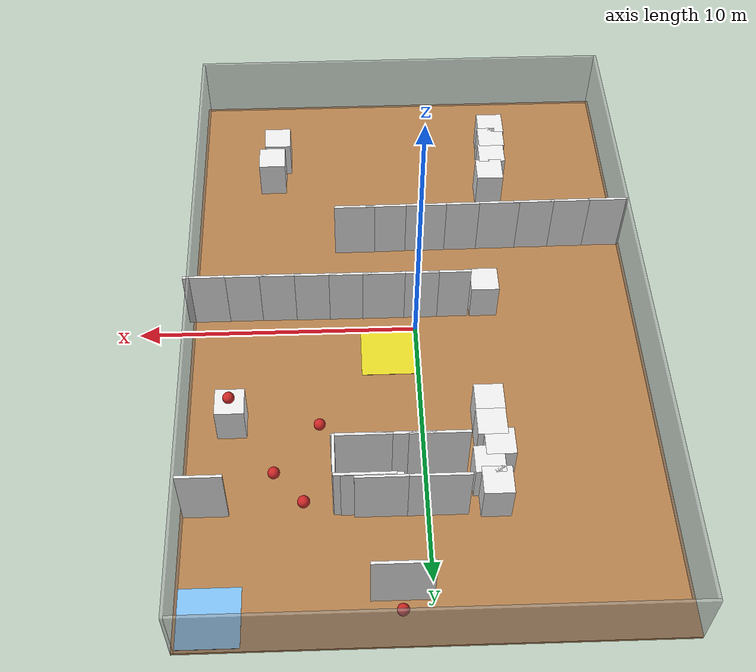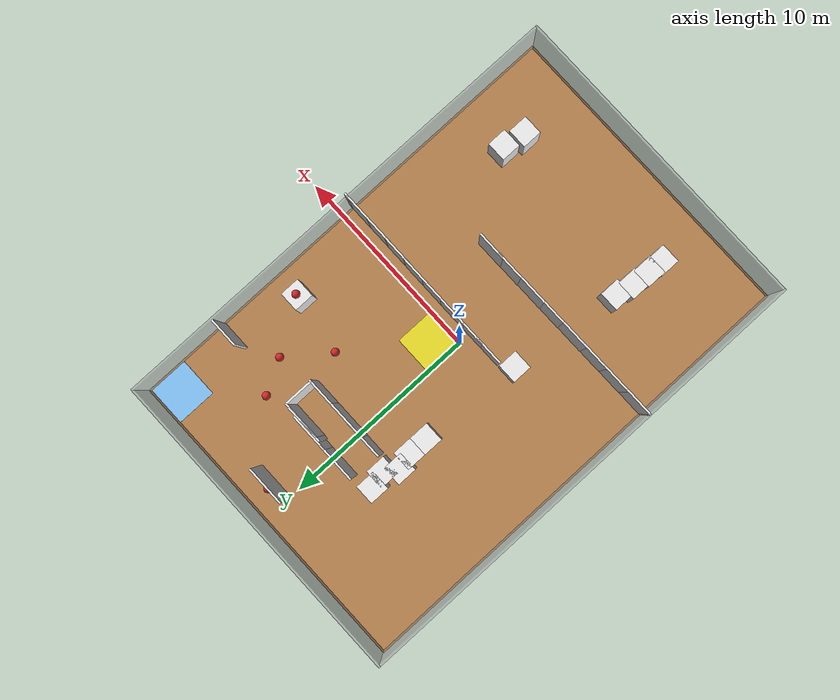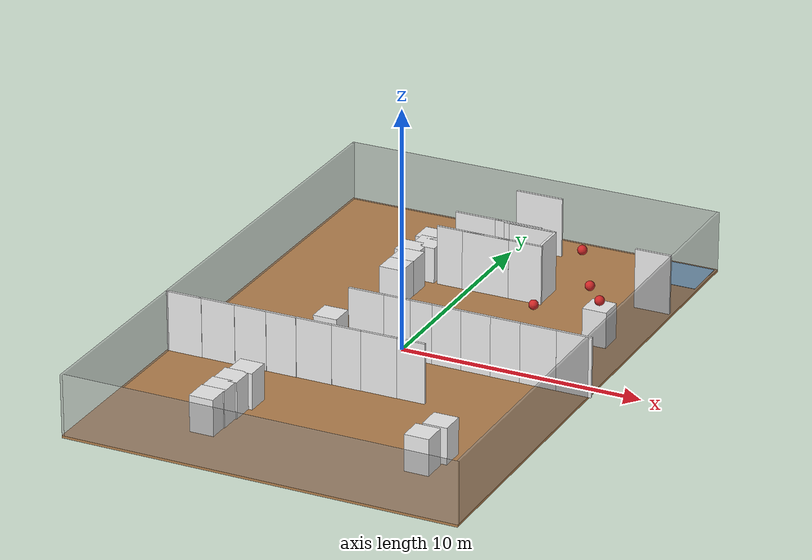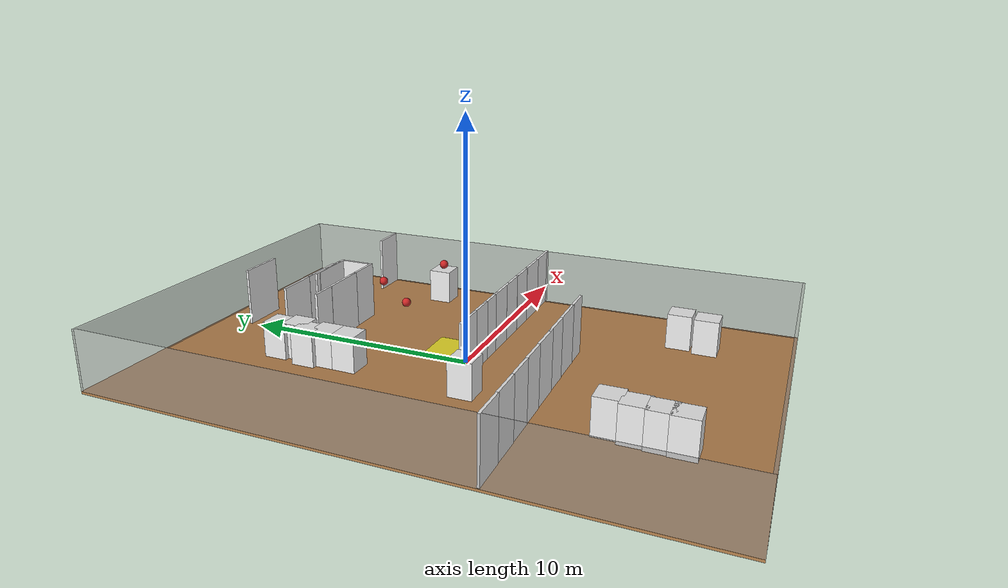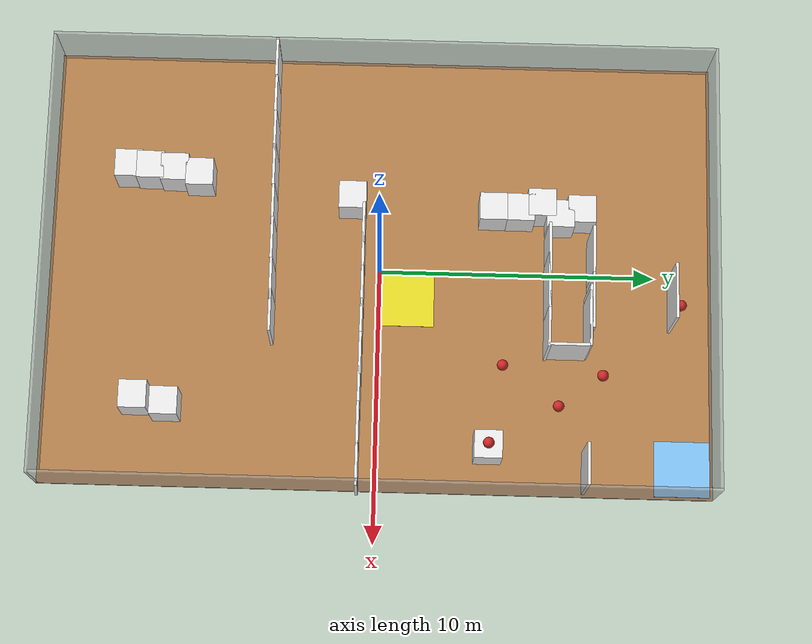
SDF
<sdf version="1.6">
 <world name="default">
  <light name="sun" type="directional">
   <pose>0 0 10 0 -0 0</pose>
   <diffuse>0.8 0.8 0.8 1</diffuse>
   <specular>0.2 0.2 0.2 1</specular>
   <attenuation>
    <range>1000</range>
    <constant>0.9</constant>
    <linear>0.01</linear>
    <quadratic>0.001</quadratic>
   </attenuation>
   <direction>-0.5 0.1 -0.9</direction>
  </light>
  <physics name="default_physics" default="0" type="ode">
   <real_time_update_rate>1000.0</real_time_update_rate>
   <max_step_size>0.001</max_step_size>
   <real_time_factor>1</real_time_factor>
   <ode>
    <solver>
     <type>quick</type>
     <iters>150</iters>
     <precon_iters>0</precon_iters>
     <sor>1.400000</sor>
     <use_dynamic_moi_rescaling>1</use_dynamic_moi_rescaling>
    </solver>
    <constraints>
     <cfm>0.00001</cfm>
     <erp>0.2</erp>
     <contact_max_correcting_vel>2000.000000</contact_max_correcting_vel>
     <contact_surface_layer>0.01000</contact_surface_layer>
    </constraints>
   </ode>
  </physics>
  <model name="box_1">
   <pose>0.05 -12.05 1.25 0 -0 0</pose>
   <static>1</static>
   <link name="link">
    <collision name="collision"><geometry><box><size>16.1 0.1 2.5</size></box></geometry></collision>
    <visual name="visual">
     <geometry><box><size>16.1 0.1 2.5</size></box></geometry>
     <material>
      <script><name>Gazebo/GreyTransparent</name><uri>file://media/materials/scripts/gazebo.material</uri></script>
     </material>
    </visual>
   </link>
  </model>
  <model name="box_2">
   <pose>8.05 0.05 1.25 0 -0 0</pose>
   <static>1</static>
   <link name="link">
    <collision name="collision"><geometry><box><size>0.1 24.1 2.5</size></box></geometry></collision>
    <visual name="visual">
     <geometry><box><size>0.1 24.1 2.5</size></box></geometry>
     <material>
      <script><name>Gazebo/GreyTransparent</name><uri>file://media/materials/scripts/gazebo.material</uri></script>
     </material>
    </visual>
   </link>
  </model>
  <model name="box_3">
   <pose>-0.05 12.05 1.25 0 -0 0</pose>
   <static>1</static>
   <link name="link">
    <collision name="collision"><geometry><box><size>16.1 0.1 2.5</size></box></geometry></collision>
    <visual name="visual">
     <geometry><box><size>16.1 0.1 2.5</size></box></geometry>
     <material>
      <script><name>Gazebo/GreyTransparent</name><uri>file://media/materials/scripts/gazebo.material</uri></script>
     </material>
    </visual>
   </link>
  </model>
  <model name="box_4">
   <pose>-8.05 -0.05 1.25 0 -0 0</pose>
   <static>1</static>
   <link name="link">
    <collision name="collision"><geometry><box><size>0.1 24.1 2.5</size></box></geometry></collision>
    <visual name="visual">
     <geometry><box><size>0.1 24.1 2.5</size></box></geometry>
     <material>
      <script><name>Gazebo/GreyTransparent</name><uri>file://media/materials/scripts/gazebo.material</uri></script>
     </material>
    </visual>
   </link>
  </model>
  <model name="box_5">
   <pose>0 0 -0.05 0 -0 0</pose>
   <static>1</static>
   <link name="link">
    <collision name="collision"><geometry><box><size>16.2 24.2 0.1</size></box></geometry></collision>
    <visual name="visual">
     <geometry><box><size>16.2 24.2 0.1</size></box></geometry>
     <material>
      <script><name>Gazebo/WoodFloor</name><uri>file://media/materials/scripts/gazebo.material</uri></script>
     </material>
    </visual>
   </link>
  </model>
  <model name="box_6">
   <pose>3.05 6.75 1.25 0 -0 0</pose>
   <static>1</static>
   <link name="link">
    <collision name="collision"><geometry><box><size>0.1 1.5 2.5</size></box></geometry></collision>
    <visual name="visual">
     <geometry><box><size>0.1 1.5 2.5</size></box></geometry>
     <material>
      <script><name>Gazebo/White</name><uri>file://media/materials/scripts/gazebo.material</uri></script>
     </material>
    </visual>
   </link>
  </model>
  <model name="box_7">
   <pose>1 10.55 1.25 0 -0 0</pose>
   <static>1</static>
   <link name="link">
    <collision name="collision"><geometry><box><size>2 0.1 2.5</size></box></geometry></collision>
    <visual name="visual">
     <geometry><box><size>2 0.1 2.5</size></box></geometry>
     <material>
      <script><name>Gazebo/White</name><uri>file://media/materials/scripts/gazebo.material</uri></script>
     </material>
    </visual>
   </link>
  </model>
  <model name="box_8">
   <pose>7.25 7.45 1.25 0 -0 0</pose>
   <static>1</static>
   <link name="link">
    <collision name="collision"><geometry><box><size>1.5 0.1 2.5</size></box></geometry></collision>
    <visual name="visual">
     <geometry><box><size>1.5 0.1 2.5</size></box></geometry>
     <material>
      <script><name>Gazebo/White</name><uri>file://media/materials/scripts/gazebo.material</uri></script>
     </material>
    </visual>
   </link>
  </model>
  <model name="box_9">
   <pose>6.5 4 0.75 0 -0 0</pose>
   <static>1</static>
   <link name="link">
    <collision name="collision"><geometry><box><size>1 1 1.5</size></box></geometry></collision>
    <visual name="visual">
     <geometry><box><size>1 1 1.5</size></box></geometry>
     <material>
      <script><name>Gazebo/White</name><uri>file://media/materials/scripts/gazebo.material</uri></script>
     </material>
    </visual>
   </link>
  </model>
  <model name="box_10">
   <pose>1 1 0.005 0 -0 0</pose>
   <static>1</static>
   <link name="link">
    <collision name="collision"><geometry><box><size>2 2 0.01</size></box></geometry></collision>
    <visual name="visual">
     <geometry><box><size>2 2 0.01</size></box></geometry>
     <material>
      <script><name>Gazebo/Yellow</name><uri>file://media/materials/scripts/gazebo.material</uri></script>
     </material>
    </visual>
   </link>
  </model>
  <model name="box_11">
   <pose>7 11 0.005 0 -0 0</pose>
   <static>1</static>
   <link name="link">
    <collision name="collision"><geometry><box><size>2 2 0.01</size></box></geometry></collision>
    <visual name="visual">
     <geometry><box><size>2 2 0.01</size></box></geometry>
     <material>
      <script><name>Gazebo/SkyBlue</name><uri>file://media/materials/scripts/gazebo.material</uri></script>
     </material>
    </visual>
   </link>
  </model>
  <model name="sphere_1">
   <pose>3.5 4.5 0.72 0 -0 0</pose>
   <static>1</static>
   <link name="link">
    <collision name="collision"><geometry><sphere><radius>0.2</radius></sphere></geometry></collision>
    <visual name="visual">
     <geometry><sphere><radius>0.2</radius></sphere></geometry>
     <material>
      <script><name>Gazebo/Red</name><uri>file://media/materials/scripts/gazebo.material</uri></script>
     </material>
    </visual>
   </link>
  </model>
  <model name="sphere_2">
   <pose>4 8 1.72 0 -0 0</pose>
   <static>1</static>
   <link name="link">
    <collision name="collision"><geometry><sphere><radius>0.2</radius></sphere></geometry></collision>
    <visual name="visual">
     <geometry><sphere><radius>0.2</radius></sphere></geometry>
     <material>
      <script><name>Gazebo/Red</name><uri>file://media/materials/scripts/gazebo.material</uri></script>
     </material>
    </visual>
   </link>
  </model>
  <model name="sphere_3">
   <pose>5 6.5 1 0 -0 0</pose>
   <static>1</static>
   <link name="link">
    <collision name="collision"><geometry><sphere><radius>0.2</radius></sphere></geometry></collision>
    <visual name="visual">
     <geometry><sphere><radius>0.2</radius></sphere></geometry>
     <material>
      <script><name>Gazebo/Red</name><uri>file://media/materials/scripts/gazebo.material</uri></script>
     </material>
    </visual>
   </link>
  </model>
  <model name="sphere_4">
   <pose>6.5 4 1.72 0 -0 0</pose>
   <static>1</static>
   <link name="link">
    <collision name="collision"><geometry><sphere><radius>0.2</radius></sphere></geometry></collision>
    <visual name="visual">
     <geometry><sphere><radius>0.2</radius></sphere></geometry>
     <material>
      <script><name>Gazebo/Red</name><uri>file://media/materials/scripts/gazebo.material</uri></script>
     </material>
    </visual>
   </link>
  </model>
  <model name="sphere_5">
   <pose>1 11 0.2 0 -0 0</pose>
   <static>1</static>
   <link name="link">
    <collision name="collision"><geometry><sphere><radius>0.2</radius></sphere></geometry></collision>
    <visual name="visual">
     <geometry><sphere><radius>0.2</radius></sphere></geometry>
     <material>
      <script><name>Gazebo/Red</name><uri>file://media/materials/scripts/gazebo.material</uri></script>
     </material>
    </visual>
   </link>
  </model>
  <gravity>0 0 -9.8066</gravity>
  <magnetic_field>6e-06 2.3e-05 -4.2e-05</magnetic_field>
  <atmosphere type="adiabatic"/>
  <scene><ambient>0.4 0.4 0.4 1</ambient><background>0.7 0.7 0.7 1</background><shadows>1</shadows></scene>
  <spherical_coordinates>
   <surface_model>EARTH_WGS84</surface_model>
   <latitude_deg>0</latitude_deg>
   <longitude_deg>0</longitude_deg>
   <elevation>0</elevation>
   <heading_deg>0</heading_deg>
  </spherical_coordinates>
  <model name="box_8_clone">
   <pose>7.48667 -0.628309 1.25 0 -0 0</pose>
   <static>1</static>
   <link name="link">
    <collision name="collision"><geometry><box><size>1.5 0.1 2.5</size></box></geometry></collision>
    <visual name="visual">
     <geometry><box><size>1.5 0.1 2.5</size></box></geometry>
     <material>
      <script><name>Gazebo/White</name><uri>file://media/materials/scripts/gazebo.material</uri></script>
     </material>
    </visual>
   </link>
  </model>
  <model name="box_8_clone_clone">
   <pose>6.02834 -0.629635 1.25 0 -0 0</pose>
   <static>1</static>
   <link name="link">
    <collision name="collision"><geometry><box><size>1.5 0.1 2.5</size></box></geometry></collision>
    <visual name="visual">
     <geometry><box><size>1.5 0.1 2.5</size></box></geometry>
     <material>
      <script><name>Gazebo/White</name><uri>file://media/materials/scripts/gazebo.material</uri></script>
     </material>
    </visual>
   </link>
  </model>
  <model name="box_8_clone_clone_0">
   <pose>4.79045 -0.62339 1.25 0 -0 0</pose>
   <static>1</static>
   <link name="link">
    <collision name="collision"><geometry><box><size>1.5 0.1 2.5</size></box></geometry></collision>
    <visual name="visual">
     <geometry><box><size>1.5 0.1 2.5</size></box></geometry>
     <material>
      <script><name>Gazebo/White</name><uri>file://media/materials/scripts/gazebo.material</uri></script>
     </material>
    </visual>
   </link>
  </model>
  <model name="box_8_clone_clone_1">
   <pose>3.55347 -0.612787 1.25 0 -0 0</pose>
   <static>1</static>
   <link name="link">
    <collision name="collision"><geometry><box><size>1.5 0.1 2.5</size></box></geometry></collision>
    <visual name="visual">
     <geometry><box><size>1.5 0.1 2.5</size></box></geometry>
     <material>
      <script><name>Gazebo/White</name><uri>file://media/materials/scripts/gazebo.material</uri></script>
     </material>
    </visual>
   </link>
  </model>
  <model name="box_8_clone_clone_2">
   <pose>2.33718 -0.610519 1.25 0 -0 0</pose>
   <static>1</static>
   <link name="link">
    <collision name="collision"><geometry><box><size>1.5 0.1 2.5</size></box></geometry></collision>
    <visual name="visual">
     <geometry><box><size>1.5 0.1 2.5</size></box></geometry>
     <material>
      <script><name>Gazebo/White</name><uri>file://media/materials/scripts/gazebo.material</uri></script>
     </material>
    </visual>
   </link>
  </model>
  <model name="box_8_clone_clone_3">
   <pose>1.13648 -0.604834 1.25 0 -0 0</pose>
   <static>1</static>
   <link name="link">
    <collision name="collision"><geometry><box><size>1.5 0.1 2.5</size></box></geometry></collision>
    <visual name="visual">
     <geometry><box><size>1.5 0.1 2.5</size></box></geometry>
     <material>
      <script><name>Gazebo/White</name><uri>file://media/materials/scripts/gazebo.material</uri></script>
     </material>
    </visual>
   </link>
  </model>
  <model name="box_8_clone_clone_4">
   <pose>-0.06939 -0.608032 1.25 0 -0 0</pose>
   <static>1</static>
   <link name="link">
    <collision name="collision"><geometry><box><size>1.5 0.1 2.5</size></box></geometry></collision>
    <visual name="visual">
     <geometry><box><size>1.5 0.1 2.5</size></box></geometry>
     <material>
      <script><name>Gazebo/White</name><uri>file://media/materials/scripts/gazebo.material</uri></script>
     </material>
    </visual>
   </link>
  </model>
  <model name="box_8_clone_clone_5">
   <pose>-1.19812 -0.614896 1.25 0 -0 0</pose>
   <static>1</static>
   <link name="link">
    <collision name="collision"><geometry><box><size>1.5 0.1 2.5</size></box></geometry></collision>
    <visual name="visual">
     <geometry><box><size>1.5 0.1 2.5</size></box></geometry>
     <material>
      <script><name>Gazebo/White</name><uri>file://media/materials/scripts/gazebo.material</uri></script>
     </material>
    </visual>
   </link>
  </model>
  <model name="box_8_clone_clone_6">
   <pose>-7.31119 -3.93655 1.25 0 -0 0</pose>
   <static>1</static>
   <link name="link">
    <collision name="collision"><geometry><box><size>1.5 0.1 2.5</size></box></geometry></collision>
    <visual name="visual">
     <geometry><box><size>1.5 0.1 2.5</size></box></geometry>
     <material>
      <script><name>Gazebo/White</name><uri>file://media/materials/scripts/gazebo.material</uri></script>
     </material>
    </visual>
   </link>
  </model>
  <model name="box_8_clone_clone_7">
   <pose>-5.89443 -3.92311 1.25 0 -0 0</pose>
   <static>1</static>
   <link name="link">
    <collision name="collision"><geometry><box><size>1.5 0.1 2.5</size></box></geometry></collision>
    <visual name="visual">
     <geometry><box><size>1.5 0.1 2.5</size></box></geometry>
     <material>
      <script><name>Gazebo/White</name><uri>file://media/materials/scripts/gazebo.material</uri></script>
     </material>
    </visual>
   </link>
  </model>
  <model name="box_8_clone_clone_8">
   <pose>-4.55451 -3.9104 1.25 0 -0 0</pose>
   <static>1</static>
   <link name="link">
    <collision name="collision"><geometry><box><size>1.5 0.1 2.5</size></box></geometry></collision>
    <visual name="visual">
     <geometry><box><size>1.5 0.1 2.5</size></box></geometry>
     <material>
      <script><name>Gazebo/White</name><uri>file://media/materials/scripts/gazebo.material</uri></script>
     </material>
    </visual>
   </link>
  </model>
  <model name="box_8_clone_clone_9">
   <pose>-3.28418 -3.89786 1.25 0 -0 0</pose>
   <static>1</static>
   <link name="link">
    <collision name="collision"><geometry><box><size>1.5 0.1 2.5</size></box></geometry></collision>
    <visual name="visual">
     <geometry><box><size>1.5 0.1 2.5</size></box></geometry>
     <material>
      <script><name>Gazebo/White</name><uri>file://media/materials/scripts/gazebo.material</uri></script>
     </material>
    </visual>
   </link>
  </model>
  <model name="box_8_clone_clone_10">
   <pose>-1.79026 -3.88343 1.25 0 -0 0</pose>
   <static>1</static>
   <link name="link">
    <collision name="collision"><geometry><box><size>1.5 0.1 2.5</size></box></geometry></collision>
    <visual name="visual">
     <geometry><box><size>1.5 0.1 2.5</size></box></geometry>
     <material>
      <script><name>Gazebo/White</name><uri>file://media/materials/scripts/gazebo.material</uri></script>
     </material>
    </visual>
   </link>
  </model>
  <model name="box_8_clone_clone_11">
   <pose>-0.566924 -3.87205 1.25 0 -0 0</pose>
   <static>1</static>
   <link name="link">
    <collision name="collision"><geometry><box><size>1.5 0.1 2.5</size></box></geometry></collision>
    <visual name="visual">
     <geometry><box><size>1.5 0.1 2.5</size></box></geometry>
     <material>
      <script><name>Gazebo/White</name><uri>file://media/materials/scripts/gazebo.material</uri></script>
     </material>
    </visual>
   </link>
  </model>
  <model name="box_8_clone_clone_12">
   <pose>0.932378 -3.8577 1.25 0 -0 0</pose>
   <static>1</static>
   <link name="link">
    <collision name="collision"><geometry><box><size>1.5 0.1 2.5</size></box></geometry></collision>
    <visual name="visual">
     <geometry><box><size>1.5 0.1 2.5</size></box></geometry>
     <material>
      <script><name>Gazebo/White</name><uri>file://media/materials/scripts/gazebo.material</uri></script>
     </material>
    </visual>
   </link>
  </model>
  <model name="box_8_clone_clone_13">
   <pose>2.09308 -3.84636 1.25 0 -0 0</pose>
   <static>1</static>
   <link name="link">
    <collision name="collision"><geometry><box><size>1.5 0.1 2.5</size></box></geometry></collision>
    <visual name="visual">
     <geometry><box><size>1.5 0.1 2.5</size></box></geometry>
     <material>
      <script><name>Gazebo/White</name><uri>file://media/materials/scripts/gazebo.material</uri></script>
     </material>
    </visual>
   </link>
  </model>
  <model name="box_9_clone">
   <pose>-2.51952 -1.05293 0.75 0 -0 0</pose>
   <static>1</static>
   <link name="link">
    <collision name="collision"><geometry><box><size>1 1 1.5</size></box></geometry></collision>
    <visual name="visual">
     <geometry><box><size>1 1 1.5</size></box></geometry>
     <material>
      <script><name>Gazebo/White</name><uri>file://media/materials/scripts/gazebo.material</uri></script>
     </material>
    </visual>
   </link>
  </model>
  <model name="box_9_clone_clone">
   <pose>-3.50243 -9.24017 0.75 0 -0 0</pose>
   <static>1</static>
   <link name="link">
    <collision name="collision"><geometry><box><size>1 1 1.5</size></box></geometry></collision>
    <visual name="visual">
     <geometry><box><size>1 1 1.5</size></box></geometry>
     <material>
      <script><name>Gazebo/White</name><uri>file://media/materials/scripts/gazebo.material</uri></script>
     </material>
    </visual>
   </link>
  </model>
  <model name="box_9_clone_clone_0">
   <pose>-3.46298 -8.44795 0.75 0 -0 0</pose>
   <static>1</static>
   <link name="link">
    <collision name="collision"><geometry><box><size>1 1 1.5</size></box></geometry></collision>
    <visual name="visual">
     <geometry><box><size>1 1 1.5</size></box></geometry>
     <material>
      <script><name>Gazebo/White</name><uri>file://media/materials/scripts/gazebo.material</uri></script>
     </material>
    </visual>
   </link>
  </model>
  <model name="box_9_clone_clone_1">
   <pose>-3.40186 -7.56359 0.75 0 -0 0</pose>
   <static>1</static>
   <link name="link">
    <collision name="collision"><geometry><box><size>1 1 1.5</size></box></geometry></collision>
    <visual name="visual">
     <geometry><box><size>1 1 1.5</size></box></geometry>
     <material>
      <script><name>Gazebo/White</name><uri>file://media/materials/scripts/gazebo.material</uri></script>
     </material>
    </visual>
   </link>
  </model>
  <model name="box_9_clone_clone_2">
   <pose>-3.23885 -6.64819 0.75 0 -0 0</pose>
   <static>1</static>
   <link name="link">
    <collision name="collision"><geometry><box><size>1 1 1.5</size></box></geometry></collision>
    <visual name="visual">
     <geometry><box><size>1 1 1.5</size></box></geometry>
     <material>
      <script><name>Gazebo/White</name><uri>file://media/materials/scripts/gazebo.material</uri></script>
     </material>
    </visual>
   </link>
  </model>
  <model name="box_9_clone_clone_3">
   <pose>5.04068 -8.64867 0.75 0 -0 0</pose>
   <static>1</static>
   <link name="link">
    <collision name="collision"><geometry><box><size>1 1 1.5</size></box></geometry></collision>
    <visual name="visual">
     <geometry><box><size>1 1 1.5</size></box></geometry>
     <material>
      <script><name>Gazebo/White</name><uri>file://media/materials/scripts/gazebo.material</uri></script>
     </material>
    </visual>
   </link>
  </model>
  <model name="box_9_clone_clone_4">
   <pose>5.24363 -7.53941 0.75 0 -0 0</pose>
   <static>1</static>
   <link name="link">
    <collision name="collision"><geometry><box><size>1 1 1.5</size></box></geometry></collision>
    <visual name="visual">
     <geometry><box><size>1 1 1.5</size></box></geometry>
     <material>
      <script><name>Gazebo/White</name><uri>file://media/materials/scripts/gazebo.material</uri></script>
     </material>
    </visual>
   </link>
  </model>
  <model name="box_9_clone_clone_5">
   <pose>-2.21389 4.06737 0.75 0 -0 0</pose>
   <static>1</static>
   <link name="link">
    <collision name="collision"><geometry><box><size>1 1 1.5</size></box></geometry></collision>
    <visual name="visual">
     <geometry><box><size>1 1 1.5</size></box></geometry>
     <material>
      <script><name>Gazebo/White</name><uri>file://media/materials/scripts/gazebo.material</uri></script>
     </material>
    </visual>
   </link>
  </model>
  <model name="box_9_clone_clone_6">
   <pose>-2.20594 5.05311 0.75 0 -0 0</pose>
   <static>1</static>
   <link name="link">
    <collision name="collision"><geometry><box><size>1 1 1.5</size></box></geometry></collision>
    <visual name="visual">
     <geometry><box><size>1 1 1.5</size></box></geometry>
     <material>
      <script><name>Gazebo/White</name><uri>file://media/materials/scripts/gazebo.material</uri></script>
     </material>
    </visual>
   </link>
  </model>
  <model name="box_9_clone_clone_7">
   <pose>-2.40815 5.82285 0.75 0 -0 0</pose>
   <static>1</static>
   <link name="link">
    <collision name="collision"><geometry><box><size>1 1 1.5</size></box></geometry></collision>
    <visual name="visual">
     <geometry><box><size>1 1 1.5</size></box></geometry>
     <material>
      <script><name>Gazebo/White</name><uri>file://media/materials/scripts/gazebo.material</uri></script>
     </material>
    </visual>
   </link>
  </model>
  <model name="box_9_clone_clone_8">
   <pose>-2 6.49358 0.75 0 -0 0</pose>
   <static>1</static>
   <link name="link">
    <collision name="collision"><geometry><box><size>1 1 1.5</size></box></geometry></collision>
    <visual name="visual">
     <geometry><box><size>1 1 1.5</size></box></geometry>
     <material>
      <script><name>Gazebo/White</name><uri>file://media/materials/scripts/gazebo.material</uri></script>
     </material>
    </visual>
   </link>
  </model>
  <model name="box_9_clone_clone_9">
   <pose>-2.19565 7.27454 0.75 0 -0 0</pose>
   <static>1</static>
   <link name="link">
    <collision name="collision"><geometry><box><size>1 1 1.5</size></box></geometry></collision>
    <visual name="visual">
     <geometry><box><size>1 1 1.5</size></box></geometry>
     <material>
      <script><name>Gazebo/White</name><uri>file://media/materials/scripts/gazebo.material</uri></script>
     </material>
    </visual>
   </link>
  </model>
  <model name="box_7_clone">
   <pose>-0.305095 7.61216 1.25 0 -0 0</pose>
   <static>1</static>
   <link name="link">
    <collision name="collision"><geometry><box><size>2 0.1 2.5</size></box></geometry></collision>
    <visual name="visual">
     <geometry><box><size>2 0.1 2.5</size></box></geometry>
     <material>
      <script><name>Gazebo/White</name><uri>file://media/materials/scripts/gazebo.material</uri></script>
     </material>
    </visual>
   </link>
  </model>
  <model name="box_7_clone_0">
   <pose>1.41089 7.60832 1.25 0 -0 0</pose>
   <static>1</static>
   <link name="link">
    <collision name="collision"><geometry><box><size>2 0.1 2.5</size></box></geometry></collision>
    <visual name="visual">
     <geometry><box><size>2 0.1 2.5</size></box></geometry>
     <material>
      <script><name>Gazebo/White</name><uri>file://media/materials/scripts/gazebo.material</uri></script>
     </material>
    </visual>
   </link>
  </model>
  <model name="box_7_clone_1">
   <pose>1.84692 7.52258 1.25 0 -0 0</pose>
   <static>1</static>
   <link name="link">
    <collision name="collision"><geometry><box><size>2 0.1 2.5</size></box></geometry></collision>
    <visual name="visual">
     <geometry><box><size>2 0.1 2.5</size></box></geometry>
     <material>
      <script><name>Gazebo/White</name><uri>file://media/materials/scripts/gazebo.material</uri></script>
     </material>
    </visual>
   </link>
  </model>
  <model name="box_7_clone_2">
   <pose>2.07025 7.503 1.25 0 -0 0</pose>
   <static>1</static>
   <link name="link">
    <collision name="collision"><geometry><box><size>2 0.1 2.5</size></box></geometry></collision>
    <visual name="visual">
     <geometry><box><size>2 0.1 2.5</size></box></geometry>
     <material>
      <script><name>Gazebo/White</name><uri>file://media/materials/scripts/gazebo.material</uri></script>
     </material>
    </visual>
   </link>
  </model>
  <model name="box_7_clone_3">
   <pose>2.13488 6.04848 1.25 0 -0 0</pose>
   <static>1</static>
   <link name="link">
    <collision name="collision"><geometry><box><size>2 0.1 2.5</size></box></geometry></collision>
    <visual name="visual">
     <geometry><box><size>2 0.1 2.5</size></box></geometry>
     <material>
      <script><name>Gazebo/White</name><uri>file://media/materials/scripts/gazebo.material</uri></script>
     </material>
    </visual>
   </link>
  </model>
  <model name="box_7_clone_4">
   <pose>0.71983 6.04704 1.25 0 -0 0</pose>
   <static>1</static>
   <link name="link">
    <collision name="collision"><geometry><box><size>2 0.1 2.5</size></box></geometry></collision>
    <visual name="visual">
     <geometry><box><size>2 0.1 2.5</size></box></geometry>
     <material>
      <script><name>Gazebo/White</name><uri>file://media/materials/scripts/gazebo.material</uri></script>
     </material>
    </visual>
   </link>
  </model>
  <model name="box_7_clone_5">
   <pose>-0.380978 6.05566 1.25 0 -0 0</pose>
   <static>1</static>
   <link name="link">
    <collision name="collision"><geometry><box><size>2 0.1 2.5</size></box></geometry></collision>
    <visual name="visual">
     <geometry><box><size>2 0.1 2.5</size></box></geometry>
     <material>
      <script><name>Gazebo/White</name><uri>file://media/materials/scripts/gazebo.material</uri></script>
     </material>
    </visual>
   </link>
  </model>
 </world>
</sdf>
